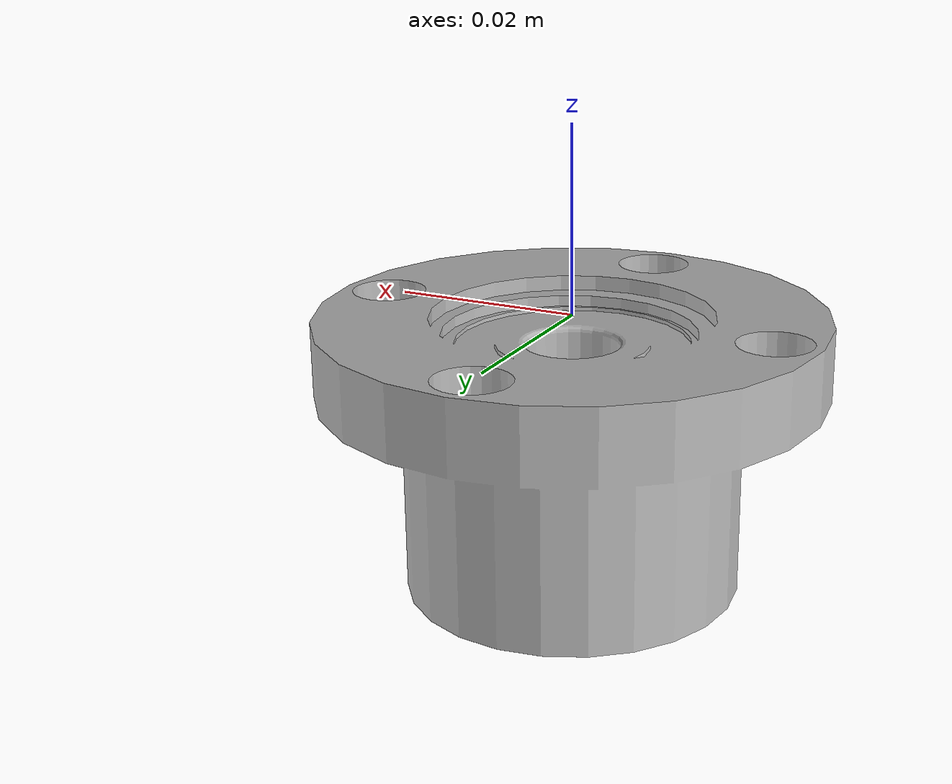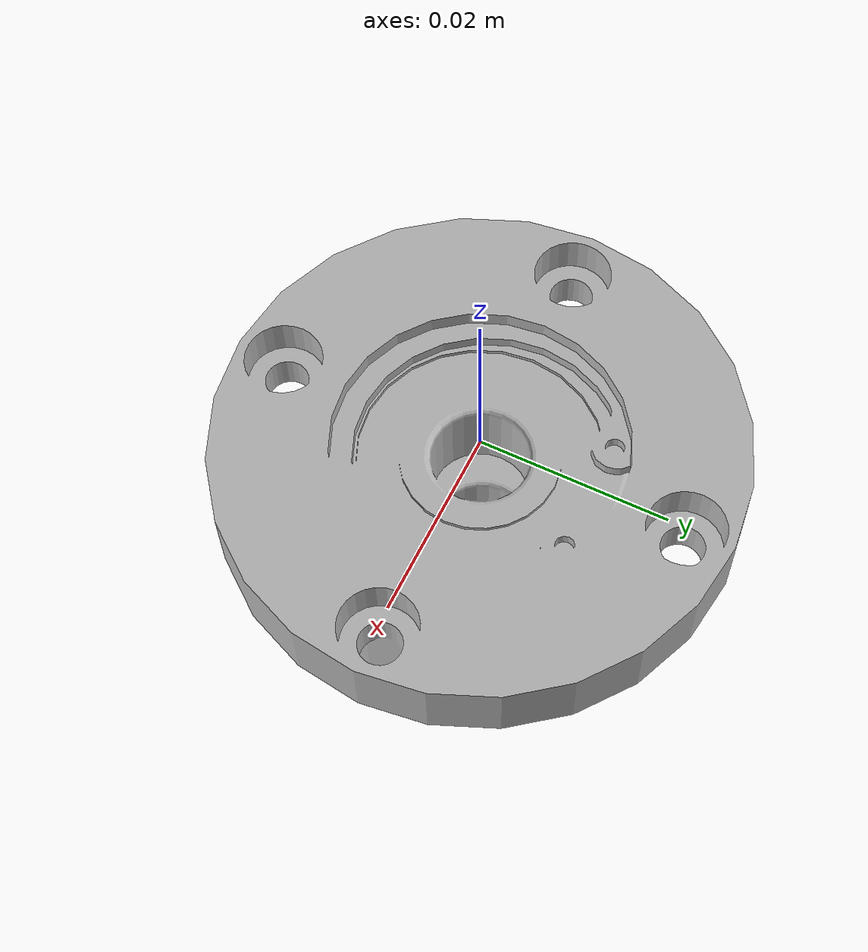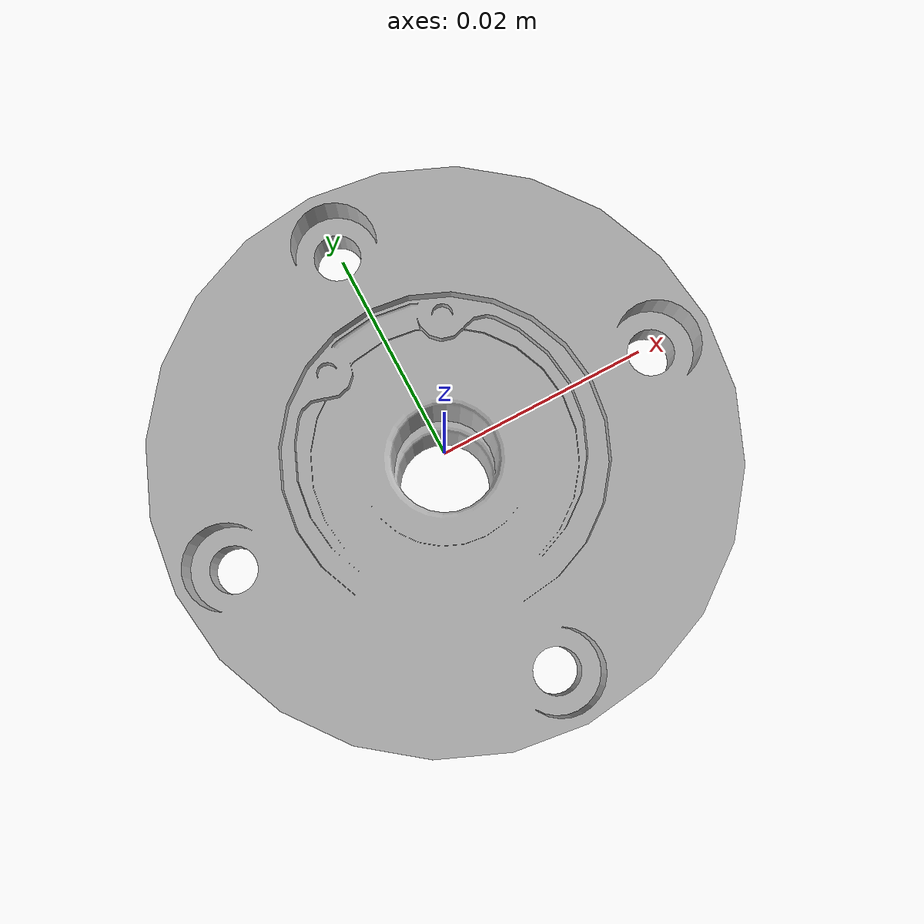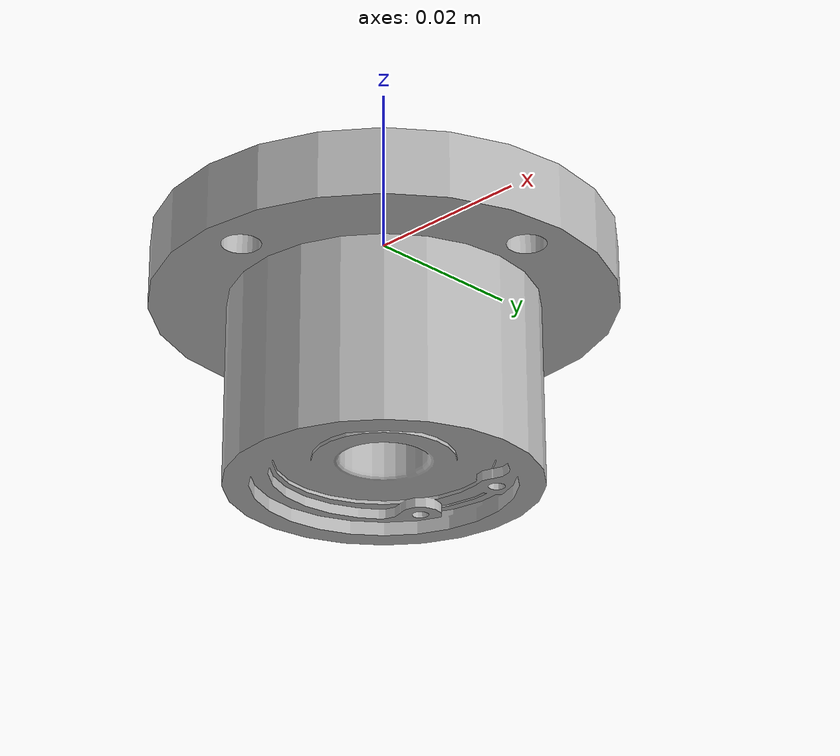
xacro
<?xml version="1.0"?>
<robot name="wrs_bearinghousing" xmlns:xacro="http://wiki.ros.org/xacro">

  <link name="bearinghousing_link">
    <inertial>
      <origin xyz="0 0 -0.0117606" rpy="0 -1.5708 0" />
      <mass value="0.13793" />
      <inertia 	ixx ="4.052e-05" ixy = "-8.029e-15" ixz = "3.501e-17" iyx = "-8.029e-15" iyy = "3.004e-05" iyz = "0.00" izx = "3.501e-17" izy = "0.00" izz = "3.004e-05"/>
    </inertial>
    <visual>
      <origin xyz="0 0 0" rpy="0 -1.5708 0"/>
      <geometry>
	<mesh filename="package://wrs_description/meshes/collision/SBARB6200ZZ-30.stl" scale="0.001 0.001 0.001"/>
      </geometry>
      <material name="gray">
	<color rgba="0.7 0.7 0.7 1"/>
      </material>
    </visual>
    <collision>
      <origin xyz="0 0 0" rpy="0 -1.5708 0"/>
      <geometry>
	<mesh filename="package://wrs_description/meshes/collision/SBARB6200ZZ-30.stl" scale="0.001 0.001 0.001"/>
      </geometry>
    </collision>
  </link>

   <gazebo reference="bearinghousing_link">
  <visual>
  <material>
  <ambient>0.65 0.65 0.65 1.0</ambient>
  <diffuse>0.7 0.7 0.7 1.0</diffuse>
  <specular>0.9 0.9 0.9 1.0</specular>
  <emissive>0.0 0.0 0.0 0.0</emissive>
  </material>
  </visual>
  </gazebo>

</robot>
